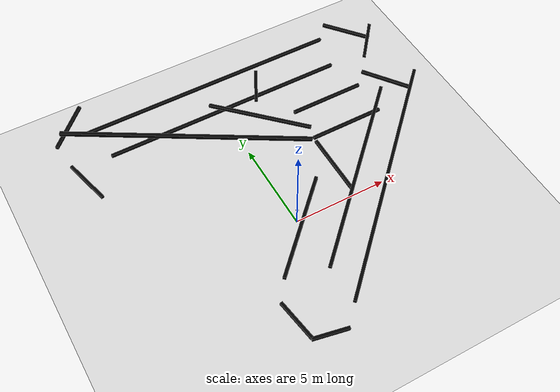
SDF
<?xml version="1.0" ?>
<sdf version="1.6">
  <world name="default">
    <physics name="1ms" type="ignored">
      <max_step_size>0.001</max_step_size>
      <real_time_factor>1.0</real_time_factor>
    </physics>
    <plugin
      filename="gz-sim-physics-system"
      name="gz::sim::systems::Physics">
    </plugin>
    <plugin
      filename="gz-sim-user-commands-system"
      name="gz::sim::systems::UserCommands">
    </plugin>
    <plugin
      filename="gz-sim-scene-broadcaster-system"
      name="gz::sim::systems::SceneBroadcaster">
    </plugin>
    <plugin
      filename="gz-sim-sensors-system"
      name="gz::sim::systems::Sensors">
      <render_engine>ogre</render_engine>
    </plugin>
    <plugin
      filename="gz-sim-imu-system"
      name="gz::sim::systems::Imu">
    </plugin>
    <plugin
      filename="gz-sim-contact-system"
      name="gz::sim::systems::Contact">
    </plugin>

    <light type="directional" name="sun">
      <cast_shadows>false</cast_shadows>
      <pose>1 2 4 0 0 0</pose>
      <diffuse>0.8 0.8 0.8 1</diffuse>
      <specular>0.2 0.2 0.2 1</specular>
      <attenuation>
        <range>1000</range>
        <constant>0.9</constant>
        <linear>0.01</linear>
        <quadratic>0.001</quadratic>
      </attenuation>
      <direction>-0.5 0.1 -0.9</direction>
    </light>

    <model name="ground_plane">
      <static>true</static>
      <link name="link">
        <collision name="collision">
          <geometry>
            <plane>
              <normal>0 0 1</normal>
              <size>100 100</size>
            </plane>
          </geometry>
        </collision>
        <visual name="visual">
          <geometry>
            <plane>
              <normal>0 0 1</normal>
              <size>100 100</size>
            </plane>
          </geometry>
          <material>
            <ambient>0.8 0.8 0.8 1.0</ambient>
            <diffuse>0.8 0.8 0.8 1.0</diffuse>
            <specular>0.8 0.8 0.8 0</specular>
          </material>
        </visual>
      </link>
    </model>

     <model name="my_cubeCenter">
      <pose>0 0 1 0 0 0</pose> <!-- x, y, z, roll, pitch, yaw -->
      <link name="link">
        <visual name="visual">
          <geometry>
            <box>
              <size>0.1 0.1 0.1</size> <!-- width, depth, height -->
            </box>
          </geometry>
          <material>
            <ambient>0.5 0.0 0.5 1</ambient>
            <diffuse>0.5 0.0 0.5 1</diffuse>
            <specular>0.0 0.5 0.5 1</specular>
          </material>
        </visual>
        <collision name="collision">
          <geometry>
            <box>
              <size>0.1 0.1 0.1</size>
            </box>
          </geometry>
        </collision>
      </link>
    </model>

    <model name="my_cube0">
      <pose>0 7.5 1 0 0 0</pose> <!-- x, y, z, roll, pitch, yaw -->
      <link name="link">
        <visual name="visual">
          <geometry>
            <box>
              <size>13 0.15 0.15</size> <!-- width, depth, height -->
            </box>
          </geometry>
          <material>
            <ambient>0.0 0.0 0.0 1</ambient>
            <diffuse>0.0 0.0 0.0 1</diffuse>
            <specular>0.0 0.5 0.5 1</specular>
          </material>
        </visual>
        <collision name="collision">
          <geometry>
            <box>
              <size>13 0.15 0.15</size>
            </box>
          </geometry>
        </collision>
      </link>
    </model>

    <model name="my_cube1">
      <pose>0 9.5 1 0 0 0</pose> <!-- x, y, z, roll, pitch, yaw -->
      <link name="link">
        <visual name="visual">
          <geometry>
            <box>
              <size>14 0.15 0.15</size> <!-- width, depth, height -->
            </box>
          </geometry>
          <material>
            <ambient>0.0 0.0 0.0 1</ambient>
            <diffuse>0.0 0.0 0.0 1</diffuse>
            <specular>0.5 0.5 0.5 1</specular>
          </material>
        </visual>
        <collision name="collision">
          <geometry>
            <box>
              <size>14 0.15 0.15</size>
            </box>
          </geometry>
        </collision>
      </link>
    </model>

    <model name="my_cube2">
      <pose>8 8.5 2 0 0 0.685</pose> <!-- x, y, z, roll, pitch, yaw -->
      <link name="link">
        <visual name="visual">
          <geometry>
            <box>
              <size>0.15 2.65 0.15</size> <!-- width, depth, height -->
            </box>
          </geometry>
          <material>
            <ambient>0.0 0.0 0.0 1</ambient>
            <diffuse>0.0 0.0 0.0 1</diffuse>
            <specular>0.5 0.5 0.5 1</specular>
          </material>
        </visual>
        <collision name="collision">
          <geometry>
            <box>
              <size>0.15 2.65 0.15</size>
            </box>
          </geometry>
        </collision>
      </link>
    </model>

    <model name="my_cube3">
      <pose>8 6.5 3 0 0 -0.685</pose> <!-- x, y, z, roll, pitch, yaw -->
      <link name="link">
        <visual name="visual">
          <geometry>
            <box>
              <size>0.15 2.4 0.15</size> <!-- width, depth, height -->
            </box>
          </geometry>
          <material>
            <ambient>0.0 0.0 0.0 1</ambient>
            <diffuse>0.0 0.0 0.0 1</diffuse>
            <specular>0.5 0.5 0.5 1</specular>
          </material>
        </visual>
        <collision name="collision">
          <geometry>
            <box>
              <size>0.15 2.4 0.15</size>
            </box>
          </geometry>
        </collision>
      </link>
    </model>

  <model name="my_cube4">
      <pose>5 5.5 1 0 0 0</pose> <!-- x, y, z, roll, pitch, yaw -->
      <link name="link">
        <visual name="visual">
          <geometry>
            <box>
              <size>4 0.15 0.15</size> <!-- width, depth, height -->
            </box>
          </geometry>
          <material>
            <ambient>0.0 0.0 0.0 1</ambient>
            <diffuse>0.0 0.0 0.0 1</diffuse>
            <specular>0.5 0.5 0.5 1</specular>
          </material>
        </visual>
        <collision name="collision">
          <geometry>
            <box>
              <size>4 0.15 0.15</size>
            </box>
          </geometry>
        </collision>
      </link>
    </model>

    <model name="my_cube5">
      <pose>1.3 6.5 3 0 0 -0.485</pose> <!-- x, y, z, roll, pitch, yaw -->
      <link name="link">
        <visual name="visual">
          <geometry>
            <box>
              <size>0.15 2.0 0.15</size> <!-- width, depth, height -->
            </box>
          </geometry>
          <material>
            <ambient>0.0 0.0 0.0 1</ambient>
            <diffuse>0.0 0.0 0.0 1</diffuse>
            <specular>0.5 0.5 0.5 1</specular>
          </material>
        </visual>
        <collision name="collision">
          <geometry>
            <box>
              <size>0.15 2.0 0.15</size>
            </box>
          </geometry>
        </collision>
      </link>
    </model>

  <model name="my_cube6">
      <pose>0.9 5.4 2 0 0 0.785</pose> <!-- x, y, z, roll, pitch, yaw -->
      <link name="link">
        <visual name="visual">
          <geometry>
            <box>
              <size>0.15 5.4 0.15</size> <!-- width, depth, height -->
            </box>
          </geometry>
          <material>
            <ambient>0.0 0.0 0.0 1</ambient>
            <diffuse>0.0 0.0 0.0 1</diffuse>
            <specular>0.5 0.5 0.5 1</specular>
          </material>
        </visual>
        <collision name="collision">
          <geometry>
            <box>
              <size>0.15 5.4 0.15</size>
            </box>
          </geometry>
        </collision>
      </link>
    </model>

  <model name="my_cube7">
      <pose>5 3.5 1 0 0 0</pose> <!-- x, y, z, roll, pitch, yaw -->
      <link name="link">
        <visual name="visual">
          <geometry>
            <box>
              <size>4 0.15 0.15</size> <!-- width, depth, height -->
            </box>
          </geometry>
          <material>
            <ambient>0.0 0.0 0.0 1</ambient>
            <diffuse>0.0 0.0 0.0 1</diffuse>
            <specular>0.5 0.5 0.5 1</specular>
          </material>
        </visual>
        <collision name="collision">
          <geometry>
            <box>
              <size>4 0.15 0.15</size>
            </box>
          </geometry>
        </collision>
      </link>
    </model>

    <model name="my_cube8">
      <pose>7.9 4.4 2 0 0 0.635</pose> <!-- x, y, z, roll, pitch, yaw -->
      <link name="link">
        <visual name="visual">
          <geometry>
            <box>
              <size>0.15 2.65 0.15</size> <!-- width, depth, height -->
            </box>
          </geometry>
          <material>
            <ambient>0.0 0.0 0.0 1</ambient>
            <diffuse>0.0 0.0 0.0 1</diffuse>
            <specular>0.5 0.5 0.5 1</specular>
          </material>
        </visual>
        <collision name="collision">
          <geometry>
            <box>
              <size>0.15 2.65 0.15</size>
            </box>
          </geometry>
        </collision>
      </link>
    </model>

    <model name="my_cube9">
      <pose>4 -1.5 3 0 0 -0.785</pose> <!-- x, y, z, roll, pitch, yaw -->
      <link name="link">
        <visual name="visual">
          <geometry>
            <box>
              <size>0.15 14 0.15</size> <!-- width, depth, height -->
            </box>
          </geometry>
          <material>
            <ambient>0.0 0.0 0.0 1</ambient>
            <diffuse>0.0 0.0 0.0 1</diffuse>
            <specular>0.5 0.5 0.5 1</specular>
          </material>
        </visual>
        <collision name="collision">
          <geometry>
            <box>
              <size>0.15 14 0.15</size>
            </box>
          </geometry>
        </collision>
      </link>
    </model>

    <model name="my_cube10">
      <pose>2.9 -0.6 3 0 0 -0.785</pose> <!-- x, y, z, roll, pitch, yaw -->
      <link name="link">
        <visual name="visual">
          <geometry>
            <box>
              <size>0.15 11 0.15</size> <!-- width, depth, height -->
            </box>
          </geometry>
          <material>
            <ambient>0.0 0.0 0.0 1</ambient>
            <diffuse>0.0 0.0 0.0 1</diffuse>
            <specular>0.5 0.5 0.5 1</specular>
          </material>
        </visual>
        <collision name="collision">
          <geometry>
            <box>
              <size>0.15 11 0.15</size>
            </box>
          </geometry>
        </collision>
      </link>
    </model>

    <model name="my_cube11">
      <pose>-2 -6.4 1 0 0 -0.2</pose> <!-- x, y, z, roll, pitch, yaw -->
      <link name="link">
        <visual name="visual">
          <geometry>
            <box>
              <size>1.8 0.15 0.15</size> <!-- width, depth, height -->
            </box>
          </geometry>
          <material>
            <ambient>0.0 0.0 0.0 1</ambient>
            <diffuse>0.0 0.0 0.0 1</diffuse>
            <specular>0.5 0.5 0.5 1</specular>
          </material>
        </visual>
        <collision name="collision">
          <geometry>
            <box>
              <size>1.8 0.15 0.15</size>
            </box>
          </geometry>
        </collision>
      </link>
    </model>

     <model name="my_cube12">
      <pose>-3 -5.1 1 0 0 0.15</pose> <!-- x, y, z, roll, pitch, yaw -->
      <link name="link">
        <visual name="visual">
          <geometry>
            <box>
              <size>0.15 2.2 0.15</size> <!-- width, depth, height -->
            </box>
          </geometry>
          <material>
            <ambient>0.0 0.0 0.0 1</ambient>
            <diffuse>0.0 0.0 0.0 1</diffuse>
            <specular>0.5 0.5 0.5 1</specular>
          </material>
        </visual>
        <collision name="collision">
          <geometry>
            <box>
              <size>0.15 2.2 0.15</size>
            </box>
          </geometry>
        </collision>
      </link>
    </model>

    <model name="my_cube13">
      <pose>3 1.5 1 0 0 0</pose> <!-- x, y, z, roll, pitch, yaw -->
      <link name="link">
        <visual name="visual">
          <geometry>
            <box>
              <size>0.15 3.5 0.15</size> <!-- width, depth, height -->
            </box>
          </geometry>
          <material>
            <ambient>0.0 0.0 0.0 1</ambient>
            <diffuse>0.0 0.0 0.0 1</diffuse>
            <specular>0.5 0.5 0.5 1</specular>
          </material>
        </visual>
        <collision name="collision">
          <geometry>
            <box>
              <size>0.15 3.5 0.15</size>
            </box>
          </geometry>
        </collision>
      </link>
    </model>

    <model name="my_cube14">
      <pose>-1 -2 3 0 0 -0.785</pose> <!-- x, y, z, roll, pitch, yaw -->
      <link name="link">
        <visual name="visual">
          <geometry>
            <box>
              <size>0.15 5.65 0.15</size> <!-- width, depth, height -->
            </box>
          </geometry>
          <material>
            <ambient>0.0 0.0 0.0 1</ambient>
            <diffuse>0.0 0.0 0.0 1</diffuse>
            <specular>0.5 0.5 0.5 1</specular>
          </material>
        </visual>
        <collision name="collision">
          <geometry>
            <box>
              <size>0.15 5.65 0.15</size>
            </box>
          </geometry>
        </collision>
      </link>
    </model>

    <model name="my_cube15">
      <pose>-8.0 8.6 3 0 0 -0.785</pose> <!-- x, y, z, roll, pitch, yaw -->
      <link name="link">
        <visual name="visual">
          <geometry>
            <box>
              <size>0.15 2.7 0.15</size> <!-- width, depth, height -->
            </box>
          </geometry>
          <material>
            <ambient>0.0 0.0 0.0 1</ambient>
            <diffuse>0.0 0.0 0.0 1</diffuse>
            <specular>0.5 0.5 0.5 1</specular>
          </material>
        </visual>
        <collision name="collision">
          <geometry>
            <box>
              <size>0.15 2.7 0.15</size>
            </box>
          </geometry>
        </collision>
      </link>
    </model>

    <model name="my_cube16">
      <pose>-4.1 2.9 6 0 0 1.03</pose> <!-- x, y, z, roll, pitch, yaw -->
      <link name="link">
        <visual name="visual">
          <geometry>
            <box>
              <size>0.15 11.2 0.15</size> <!-- width, depth, height -->
            </box>
          </geometry>
          <material>
            <ambient>0.0 0.0 0.0 1</ambient>
            <diffuse>0.0 0.0 0.0 1</diffuse>
            <specular>0.5 0.5 0.5 1</specular>
          </material>
        </visual>
        <collision name="collision">
          <geometry>
            <box>
              <size>0.15 11.2 0.15</size>
            </box>
          </geometry>
        </collision>
      </link>
    </model>

    <model name="my_cube17">
      <pose>-8.2 6.6 1 0 0 0.25</pose> <!-- x, y, z, roll, pitch, yaw -->
      <link name="link">
        <visual name="visual">
          <geometry>
            <box>
              <size>0.15 2.6 0.15</size> <!-- width, depth, height -->
            </box>
          </geometry>
          <material>
            <ambient>0.0 0.0 0.0 1</ambient>
            <diffuse>0.0 0.0 0.0 1</diffuse>
            <specular>0.5 0.5 0.5 1</specular>
          </material>
        </visual>
        <collision name="collision">
          <geometry>
            <box>
              <size>0.15 2.6 0.15</size>
            </box>
          </geometry>
        </collision>
      </link>
    </model>

  </world>
</sdf>
